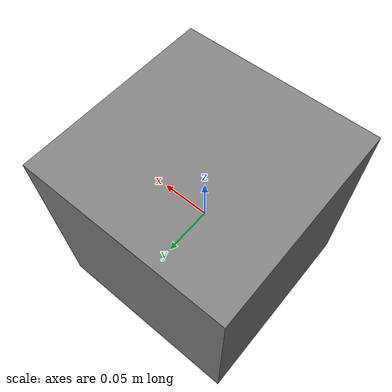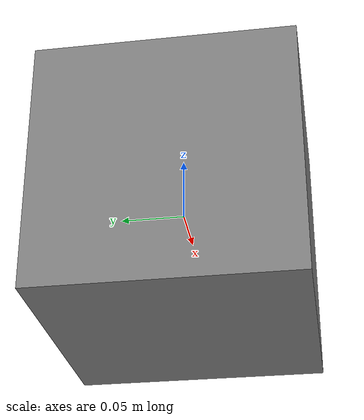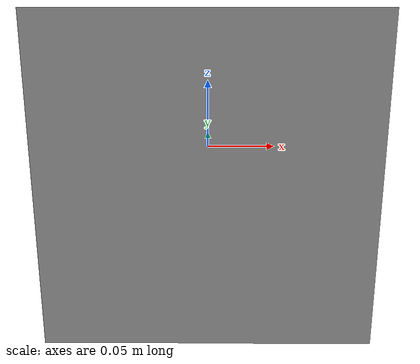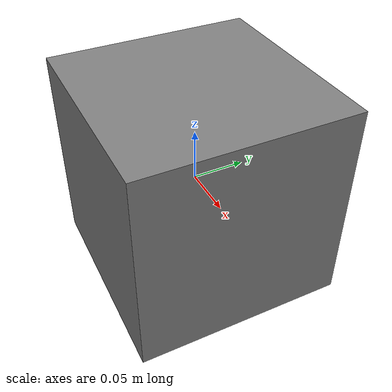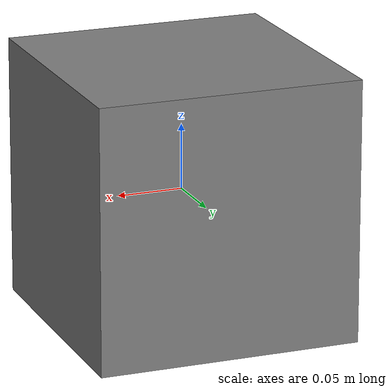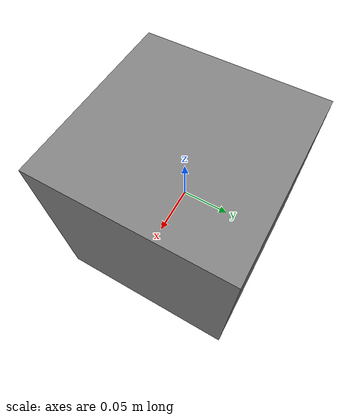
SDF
<?xml version="1.0" ?>
<sdf version="1.6">

  <model name="small_box">

    <!-- Base link with the box -->
    <link name="robot2_1/base_link">
      <visual name="visual">
        <geometry>
          <box>
            <size>0.2 0.2 0.2</size>
          </box>
        </geometry>
        <material>
          <ambient>0.5 0.5 0.5 1</ambient> <!-- Grey color -->
        </material>
      </visual>
      <collision name="collision">
        <geometry>
          <box>
            <size>0.2 0.2 0.2</size>
          </box>
        </geometry>
      </collision>
      <inertial>
        <mass>1.0</mass>
        <inertia>
          <ixx>0.1</ixx>
          <ixy>0.0</ixy>
          <ixz>0.0</ixz>
          <iyy>0.1</iyy>
          <iyz>0.0</iyz>
          <izz>0.1</izz>
        </inertia>
      </inertial>
    </link>

    <!-- Base footprint -->
    <link name="robot2_1/base_footprint">
      <visual name="visual">
        <geometry>
          <cylinder>
            <radius>0.05</radius>
            <length>0.01</length>
          </cylinder>
        </geometry>
        <material>
          <ambient>0 0 1 1</ambient> <!-- Blue color -->
        </material>
      </visual>
      <collision name="collision">
        <geometry>
          <cylinder>
            <radius>0.05</radius>
            <length>0.01</length>
          </cylinder>
        </geometry>
      </collision>
      <inertial>
        <mass>0.5</mass>
        <inertia>
          <ixx>0.01</ixx>
          <ixy>0.0</ixy>
          <ixz>0.0</ixz>
          <iyy>0.01</iyy>
          <iyz>0.0</iyz>
          <izz>0.01</izz>
        </inertia>
      </inertial>
    </link>

    <!-- Fixed joint connecting base_link and base_footprint -->
    <joint name="robot2_1/base_link_joint" type="fixed">
      <parent>robot2_1/base_footprint</parent>
      <child>robot2_1/base_link</child>
      <pose>0 0 0.1 0 0 0</pose>
    </joint>

    <!-- Gazebo Plugin for Planar Movement -->
    <plugin name="planar_move" filename="libgazebo_ros_planar_move.so">
      <body_name>robot2_1/base_link</body_name>
        <publish_odom>false</publish_odom>
        <publish_odom_tf>false</publish_odom_tf>

        <odometry_topic>/robot2_1/odom</odometry_topic>
        <odometry_frame>robot2_1/odom</odometry_frame>
        <robot_base_frame>robot2_1/base_footprint</robot_base_frame>

    </plugin>

  </model>

</sdf>
